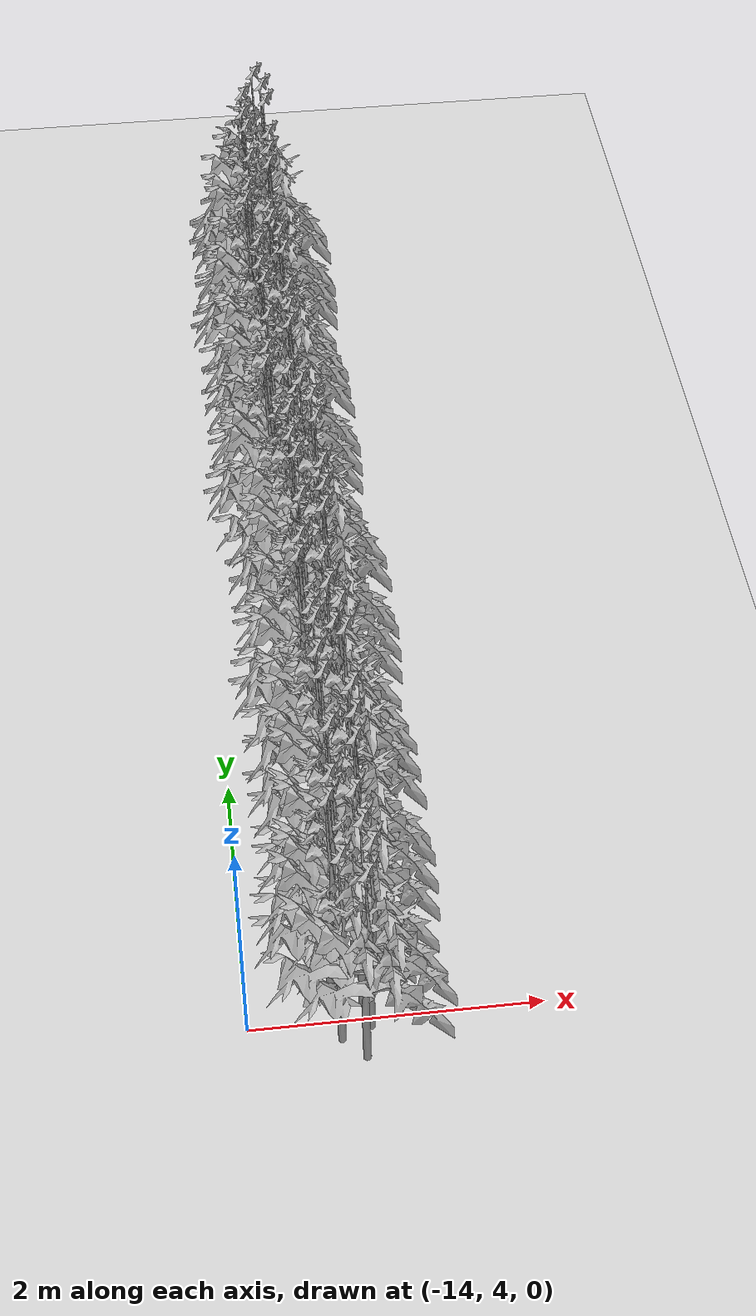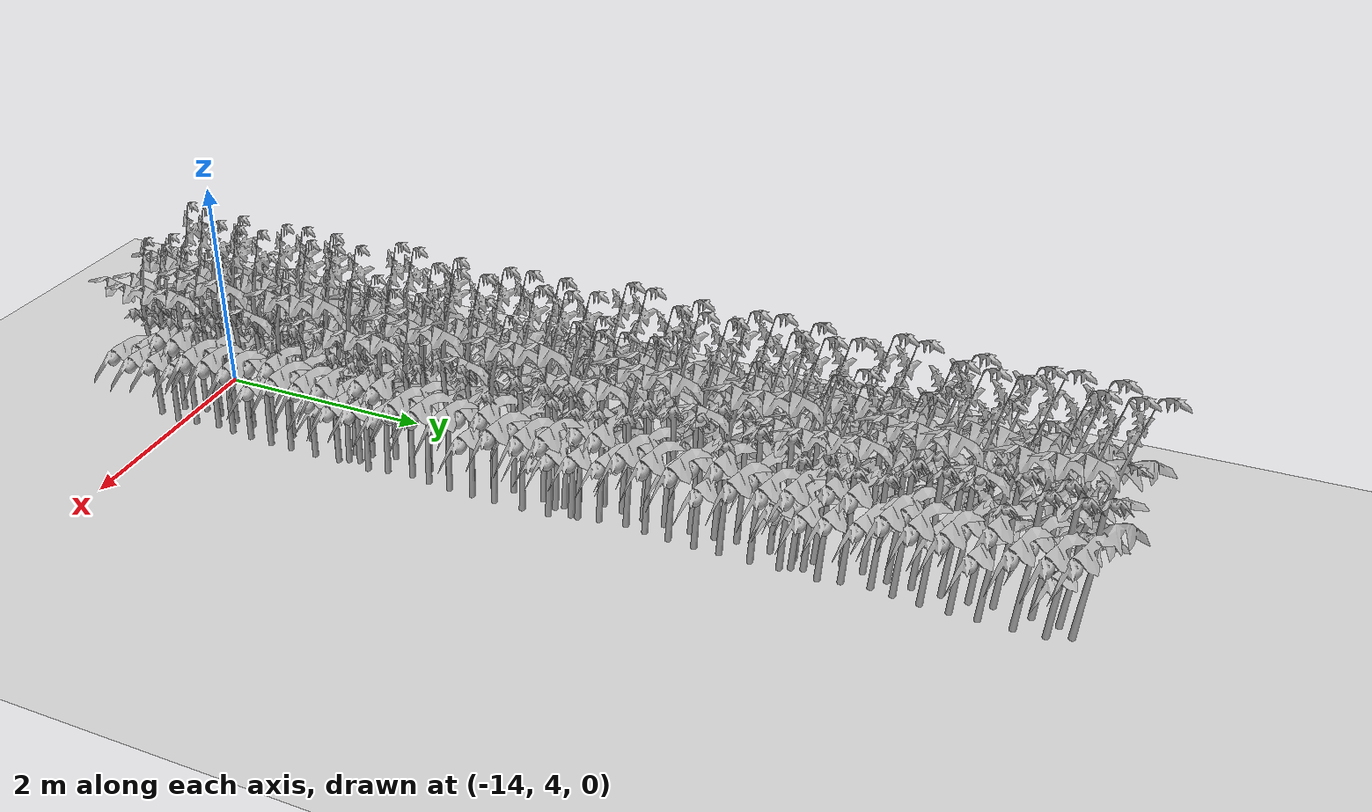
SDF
<sdf version="1.6">
 <world name="default">
  <model name="ground_plane">
   <static>1</static>
   <link name="link">
    <collision name="collision">
     <geometry><plane><normal>0 0 1</normal><size>100 100</size></plane></geometry>
     <surface>
      <contact><collide_bitmask>65535</collide_bitmask></contact>
      <friction><ode><mu>100</mu><mu2>50</mu2></ode></friction>
     </surface>
    </collision>
    <visual name="visual">
     <cast_shadows>0</cast_shadows>
     <geometry><plane><normal>0 0 1</normal><size>100 100</size></plane></geometry>
     <material>
      <script><uri>file://media/materials/scripts/gazebo.material</uri><name>Gazebo/Grey</name></script>
     </material>
    </visual>
   </link>
  </model>
  <model name="MIddle_Plant_3_11">
   <model name="MIddle_Plant_1">
    <model name="tomato_plant_big">
     <static>1</static>
     <link name="link">
      <collision name="collision">
       <pose>0 0 0 1.5708 -0 0</pose>
       <geometry><mesh><scale>0.5 0.6 0.5</scale><uri>model://stick/meshes/stick.dae</uri></mesh></geometry>
      </collision>
      <visual name="visual">
       <geometry>
        <mesh><scale>5e-06 5e-06 7e-06</scale><uri>model://tomato_plant_big/meshes/tomato-plant.dae</uri></mesh>
       </geometry>
      </visual>
     </link>
     <pose>-0.144318 -0.693607 -0 0 -0 0</pose>
    </model>
    <model name="tomato_plant_big_0">
     <static>1</static>
     <link name="link">
      <collision name="collision">
       <pose>0 0 0 1.5708 -0 0</pose>
       <geometry><mesh><scale>0.5 0.6 0.5</scale><uri>model://stick/meshes/stick.dae</uri></mesh></geometry>
      </collision>
      <visual name="visual">
       <geometry>
        <mesh><scale>5e-06 5e-06 7e-06</scale><uri>model://tomato_plant_big/meshes/tomato-plant.dae</uri></mesh>
       </geometry>
      </visual>
     </link>
     <pose>-0.11784 -0.519827 0 0 -0 0</pose>
    </model>
    <model name="tomato_plant_big_1">
     <static>1</static>
     <link name="link">
      <collision name="collision">
       <pose>0 0 0 1.5708 -0 0</pose>
       <geometry><mesh><scale>0.5 0.6 0.5</scale><uri>model://stick/meshes/stick.dae</uri></mesh></geometry>
      </collision>
      <visual name="visual">
       <geometry>
        <mesh><scale>5e-06 5e-06 7e-06</scale><uri>model://tomato_plant_big/meshes/tomato-plant.dae</uri></mesh>
       </geometry>
      </visual>
     </link>
     <pose>0.073755 -0.247584 0 0 -0 0</pose>
    </model>
    <model name="tomato_plant_big_10">
     <static>1</static>
     <link name="link">
      <collision name="collision">
       <pose>0 0 0 1.5708 -0 0</pose>
       <geometry><mesh><scale>0.5 0.6 0.5</scale><uri>model://stick/meshes/stick.dae</uri></mesh></geometry>
      </collision>
      <visual name="visual">
       <geometry>
        <mesh><scale>5e-06 5e-06 7e-06</scale><uri>model://tomato_plant_big/meshes/tomato-plant.dae</uri></mesh>
       </geometry>
      </visual>
     </link>
     <pose>0.037052 1.07094 0 0 -0 0</pose>
    </model>
    <model name="tomato_plant_big_2">
     <static>1</static>
     <link name="link">
      <collision name="collision">
       <pose>0 0 0 1.5708 -0 0</pose>
       <geometry><mesh><scale>0.5 0.6 0.5</scale><uri>model://stick/meshes/stick.dae</uri></mesh></geometry>
      </collision>
      <visual name="visual">
       <geometry>
        <mesh><scale>5e-06 5e-06 7e-06</scale><uri>model://tomato_plant_big/meshes/tomato-plant.dae</uri></mesh>
       </geometry>
      </visual>
     </link>
     <pose>-0.076926 -0.131165 0 0 -0 0</pose>
    </model>
    <model name="tomato_plant_big_3">
     <static>1</static>
     <link name="link">
      <collision name="collision">
       <pose>0 0 0 1.5708 -0 0</pose>
       <geometry><mesh><scale>0.5 0.6 0.5</scale><uri>model://stick/meshes/stick.dae</uri></mesh></geometry>
      </collision>
      <visual name="visual">
       <geometry>
        <mesh><scale>5e-06 5e-06 7e-06</scale><uri>model://tomato_plant_big/meshes/tomato-plant.dae</uri></mesh>
       </geometry>
      </visual>
     </link>
     <pose>0.093714 -0.038386 0 0 -0 0</pose>
    </model>
    <model name="tomato_plant_big_4">
     <static>1</static>
     <link name="link">
      <collision name="collision">
       <pose>0 0 0 1.5708 -0 0</pose>
       <geometry><mesh><scale>0.5 0.6 0.5</scale><uri>model://stick/meshes/stick.dae</uri></mesh></geometry>
      </collision>
      <visual name="visual">
       <geometry>
        <mesh><scale>5e-06 5e-06 7e-06</scale><uri>model://tomato_plant_big/meshes/tomato-plant.dae</uri></mesh>
       </geometry>
      </visual>
     </link>
     <pose>0.103117 0.184356 0 0 -0 0</pose>
    </model>
    <model name="tomato_plant_big_5">
     <static>1</static>
     <link name="link">
      <collision name="collision">
       <pose>0 0 0 1.5708 -0 0</pose>
       <geometry><mesh><scale>0.5 0.6 0.5</scale><uri>model://stick/meshes/stick.dae</uri></mesh></geometry>
      </collision>
      <visual name="visual">
       <geometry>
        <mesh><scale>5e-06 5e-06 7e-06</scale><uri>model://tomato_plant_big/meshes/tomato-plant.dae</uri></mesh>
       </geometry>
      </visual>
     </link>
     <pose>-0.074883 0.301479 0 0 -0 0</pose>
    </model>
    <model name="tomato_plant_big_6">
     <static>1</static>
     <link name="link">
      <collision name="collision">
       <pose>0 0 0 1.5708 -0 0</pose>
       <geometry><mesh><scale>0.5 0.6 0.5</scale><uri>model://stick/meshes/stick.dae</uri></mesh></geometry>
      </collision>
      <visual name="visual">
       <geometry>
        <mesh><scale>5e-06 5e-06 7e-06</scale><uri>model://tomato_plant_big/meshes/tomato-plant.dae</uri></mesh>
       </geometry>
      </visual>
     </link>
     <pose>-0.096921 0.484007 0 0 -0 0</pose>
    </model>
    <model name="tomato_plant_big_7">
     <static>1</static>
     <link name="link">
      <collision name="collision">
       <pose>0 0 0 1.5708 -0 0</pose>
       <geometry><mesh><scale>0.5 0.6 0.5</scale><uri>model://stick/meshes/stick.dae</uri></mesh></geometry>
      </collision>
      <visual name="visual">
       <geometry>
        <mesh><scale>5e-06 5e-06 7e-06</scale><uri>model://tomato_plant_big/meshes/tomato-plant.dae</uri></mesh>
       </geometry>
      </visual>
     </link>
     <pose>0.107491 0.653976 0 0 -0 0</pose>
    </model>
    <model name="tomato_plant_big_8">
     <static>1</static>
     <link name="link">
      <collision name="collision">
       <pose>0 0 0 1.5708 -0 0</pose>
       <geometry><mesh><scale>0.5 0.6 0.5</scale><uri>model://stick/meshes/stick.dae</uri></mesh></geometry>
      </collision>
      <visual name="visual">
       <geometry>
        <mesh><scale>5e-06 5e-06 7e-06</scale><uri>model://tomato_plant_big/meshes/tomato-plant.dae</uri></mesh>
       </geometry>
      </visual>
     </link>
     <pose>-0.07985 0.768549 0 0 -0 0</pose>
    </model>
    <model name="tomato_plant_big_9">
     <static>1</static>
     <link name="link">
      <collision name="collision">
       <pose>0 0 0 1.5708 -0 0</pose>
       <geometry><mesh><scale>0.5 0.6 0.5</scale><uri>model://stick/meshes/stick.dae</uri></mesh></geometry>
      </collision>
      <visual name="visual">
       <geometry>
        <mesh><scale>5e-06 5e-06 7e-06</scale><uri>model://tomato_plant_big/meshes/tomato-plant.dae</uri></mesh>
       </geometry>
      </visual>
     </link>
     <pose>0.098361 0.890852 0 0 -0 0</pose>
    </model>
    <model name="tomato_plant_medium">
     <static>1</static>
     <link name="link">
      <collision name="collision">
       <pose>0 0 0 1.5708 -0 0</pose>
       <geometry><mesh><scale>0.5 0.5 0.5</scale><uri>model://stick/meshes/stick.dae</uri></mesh></geometry>
      </collision>
      <visual name="visual">
       <geometry>
        <mesh><scale>5e-06 5e-06 6e-06</scale><uri>model://tomato_plant_medium/meshes/tomato-plant.dae</uri></mesh>
       </geometry>
      </visual>
     </link>
     <pose>0.056913 -1.05328 0 0 -0 0</pose>
    </model>
    <model name="tomato_plant_medium_0">
     <static>1</static>
     <link name="link">
      <collision name="collision">
       <pose>0 0 0 1.5708 -0 0</pose>
       <geometry><mesh><scale>0.5 0.5 0.5</scale><uri>model://stick/meshes/stick.dae</uri></mesh></geometry>
      </collision>
      <visual name="visual">
       <geometry>
        <mesh><scale>5e-06 5e-06 6e-06</scale><uri>model://tomato_plant_medium/meshes/tomato-plant.dae</uri></mesh>
       </geometry>
      </visual>
     </link>
     <pose>-0.092719 -0.905729 0 0 -0 0</pose>
    </model>
    <model name="tomato_plant_medium_1">
     <static>1</static>
     <link name="link">
      <collision name="collision">
       <pose>0 0 0 1.5708 -0 0</pose>
       <geometry><mesh><scale>0.5 0.5 0.5</scale><uri>model://stick/meshes/stick.dae</uri></mesh></geometry>
      </collision>
      <visual name="visual">
       <geometry>
        <mesh><scale>5e-06 5e-06 6e-06</scale><uri>model://tomato_plant_medium/meshes/tomato-plant.dae</uri></mesh>
       </geometry>
      </visual>
     </link>
     <pose>0.108962 -0.829637 0 0 -0 0</pose>
    </model>
    <model name="tomato_plant_medium_2">
     <static>1</static>
     <link name="link">
      <collision name="collision">
       <pose>0 0 0 1.5708 -0 0</pose>
       <geometry><mesh><scale>0.5 0.5 0.5</scale><uri>model://stick/meshes/stick.dae</uri></mesh></geometry>
      </collision>
      <visual name="visual">
       <geometry>
        <mesh><scale>5e-06 5e-06 6e-06</scale><uri>model://tomato_plant_medium/meshes/tomato-plant.dae</uri></mesh>
       </geometry>
      </visual>
     </link>
     <pose>0.071216 -0.652507 0 0 -0 0</pose>
    </model>
    <model name="tomato_plant_medium_3">
     <static>1</static>
     <link name="link">
      <collision name="collision">
       <pose>0 0 0 1.5708 -0 0</pose>
       <geometry><mesh><scale>0.5 0.5 0.5</scale><uri>model://stick/meshes/stick.dae</uri></mesh></geometry>
      </collision>
      <visual name="visual">
       <geometry>
        <mesh><scale>5e-06 5e-06 6e-06</scale><uri>model://tomato_plant_medium/meshes/tomato-plant.dae</uri></mesh>
       </geometry>
      </visual>
     </link>
     <pose>0.047335 -0.423046 0 0 -0 0</pose>
    </model>
    <model name="tomato_plant_medium_4">
     <static>1</static>
     <link name="link">
      <collision name="collision">
       <pose>0 0 0 1.5708 -0 0</pose>
       <geometry><mesh><scale>0.5 0.5 0.5</scale><uri>model://stick/meshes/stick.dae</uri></mesh></geometry>
      </collision>
      <visual name="visual">
       <geometry>
        <mesh><scale>5e-06 5e-06 6e-06</scale><uri>model://tomato_plant_medium/meshes/tomato-plant.dae</uri></mesh>
       </geometry>
      </visual>
     </link>
     <pose>-0.081012 -0.320324 0 0 -0 0</pose>
    </model>
    <model name="tomato_plant_medium_5">
     <static>1</static>
     <link name="link">
      <collision name="collision">
       <pose>0 0 0 1.5708 -0 0</pose>
       <geometry><mesh><scale>0.5 0.5 0.5</scale><uri>model://stick/meshes/stick.dae</uri></mesh></geometry>
      </collision>
      <visual name="visual">
       <geometry>
        <mesh><scale>5e-06 5e-06 6e-06</scale><uri>model://tomato_plant_medium/meshes/tomato-plant.dae</uri></mesh>
       </geometry>
      </visual>
     </link>
     <pose>-0.07452 0.095988 0 0 -0 0</pose>
    </model>
    <model name="tomato_plant_medium_6">
     <static>1</static>
     <link name="link">
      <collision name="collision">
       <pose>0 0 0 1.5708 -0 0</pose>
       <geometry><mesh><scale>0.5 0.5 0.5</scale><uri>model://stick/meshes/stick.dae</uri></mesh></geometry>
      </collision>
      <visual name="visual">
       <geometry>
        <mesh><scale>5e-06 5e-06 6e-06</scale><uri>model://tomato_plant_medium/meshes/tomato-plant.dae</uri></mesh>
       </geometry>
      </visual>
     </link>
     <pose>0.101424 0.395443 0 0 -0 0</pose>
    </model>
    <model name="tomato_plant_small">
     <static>1</static>
     <link name="link">
      <collision name="collision">
       <pose>0 0 0 1.5708 -0 0</pose>
       <geometry><mesh><scale>0.5 0.45 0.5</scale><uri>model://stick/meshes/stick.dae</uri></mesh></geometry>
      </collision>
      <visual name="visual">
       <geometry>
        <mesh><scale>5e-06 5e-06 5e-06</scale><uri>model://tomato_plant_small/meshes/tomato-plant.dae</uri></mesh>
       </geometry>
      </visual>
     </link>
     <pose>-0.060351 0.969512 0 0 -0 0</pose>
    </model>
    <static>0</static>
    <pose>0.040757 1.77284 0 0 -0 0</pose>
   </model>
   <model name="MIddle_Plant_2">
    <model name="MIddle_Plant_1">
     <model name="tomato_plant_big">
      <static>1</static>
      <link name="link">
       <collision name="collision">
        <pose>0 0 0 1.5708 -0 0</pose>
        <geometry><mesh><scale>0.5 0.6 0.5</scale><uri>model://stick/meshes/stick.dae</uri></mesh></geometry>
       </collision>
       <visual name="visual">
        <geometry>
         <mesh><scale>5e-06 5e-06 7e-06</scale><uri>model://tomato_plant_big/meshes/tomato-plant.dae</uri></mesh>
        </geometry>
       </visual>
      </link>
      <pose>-0.144318 -0.693607 -0 0 -0 0</pose>
     </model>
     <model name="tomato_plant_big_0">
      <static>1</static>
      <link name="link">
       <collision name="collision">
        <pose>0 0 0 1.5708 -0 0</pose>
        <geometry><mesh><scale>0.5 0.6 0.5</scale><uri>model://stick/meshes/stick.dae</uri></mesh></geometry>
       </collision>
       <visual name="visual">
        <geometry>
         <mesh><scale>5e-06 5e-06 7e-06</scale><uri>model://tomato_plant_big/meshes/tomato-plant.dae</uri></mesh>
        </geometry>
       </visual>
      </link>
      <pose>-0.11784 -0.519827 0 0 -0 0</pose>
     </model>
     <model name="tomato_plant_big_1">
      <static>1</static>
      <link name="link">
       <collision name="collision">
        <pose>0 0 0 1.5708 -0 0</pose>
        <geometry><mesh><scale>0.5 0.6 0.5</scale><uri>model://stick/meshes/stick.dae</uri></mesh></geometry>
       </collision>
       <visual name="visual">
        <geometry>
         <mesh><scale>5e-06 5e-06 7e-06</scale><uri>model://tomato_plant_big/meshes/tomato-plant.dae</uri></mesh>
        </geometry>
       </visual>
      </link>
      <pose>0.073755 -0.247584 0 0 -0 0</pose>
     </model>
     <model name="tomato_plant_big_10">
      <static>1</static>
      <link name="link">
       <collision name="collision">
        <pose>0 0 0 1.5708 -0 0</pose>
        <geometry><mesh><scale>0.5 0.6 0.5</scale><uri>model://stick/meshes/stick.dae</uri></mesh></geometry>
       </collision>
       <visual name="visual">
        <geometry>
         <mesh><scale>5e-06 5e-06 7e-06</scale><uri>model://tomato_plant_big/meshes/tomato-plant.dae</uri></mesh>
        </geometry>
       </visual>
      </link>
      <pose>0.037052 1.07094 0 0 -0 0</pose>
     </model>
     <model name="tomato_plant_big_2">
      <static>1</static>
      <link name="link">
       <collision name="collision">
        <pose>0 0 0 1.5708 -0 0</pose>
        <geometry><mesh><scale>0.5 0.6 0.5</scale><uri>model://stick/meshes/stick.dae</uri></mesh></geometry>
       </collision>
       <visual name="visual">
        <geometry>
         <mesh><scale>5e-06 5e-06 7e-06</scale><uri>model://tomato_plant_big/meshes/tomato-plant.dae</uri></mesh>
        </geometry>
       </visual>
      </link>
      <pose>-0.076926 -0.131165 0 0 -0 0</pose>
     </model>
     <model name="tomato_plant_big_3">
      <static>1</static>
      <link name="link">
       <collision name="collision">
        <pose>0 0 0 1.5708 -0 0</pose>
        <geometry><mesh><scale>0.5 0.6 0.5</scale><uri>model://stick/meshes/stick.dae</uri></mesh></geometry>
       </collision>
       <visual name="visual">
        <geometry>
         <mesh><scale>5e-06 5e-06 7e-06</scale><uri>model://tomato_plant_big/meshes/tomato-plant.dae</uri></mesh>
        </geometry>
       </visual>
      </link>
      <pose>0.093714 -0.038386 0 0 -0 0</pose>
     </model>
     <model name="tomato_plant_big_4">
      <static>1</static>
      <link name="link">
       <collision name="collision">
        <pose>0 0 0 1.5708 -0 0</pose>
        <geometry><mesh><scale>0.5 0.6 0.5</scale><uri>model://stick/meshes/stick.dae</uri></mesh></geometry>
       </collision>
       <visual name="visual">
        <geometry>
         <mesh><scale>5e-06 5e-06 7e-06</scale><uri>model://tomato_plant_big/meshes/tomato-plant.dae</uri></mesh>
        </geometry>
       </visual>
      </link>
      <pose>0.103117 0.184356 0 0 -0 0</pose>
     </model>
     <model name="tomato_plant_big_5">
      <static>1</static>
      <link name="link">
       <collision name="collision">
        <pose>0 0 0 1.5708 -0 0</pose>
        <geometry><mesh><scale>0.5 0.6 0.5</scale><uri>model://stick/meshes/stick.dae</uri></mesh></geometry>
       </collision>
       <visual name="visual">
        <geometry>
         <mesh><scale>5e-06 5e-06 7e-06</scale><uri>model://tomato_plant_big/meshes/tomato-plant.dae</uri></mesh>
        </geometry>
       </visual>
      </link>
      <pose>-0.074883 0.301479 0 0 -0 0</pose>
     </model>
     <model name="tomato_plant_big_6">
      <static>1</static>
      <link name="link">
       <collision name="collision">
        <pose>0 0 0 1.5708 -0 0</pose>
        <geometry><mesh><scale>0.5 0.6 0.5</scale><uri>model://stick/meshes/stick.dae</uri></mesh></geometry>
       </collision>
       <visual name="visual">
        <geometry>
         <mesh><scale>5e-06 5e-06 7e-06</scale><uri>model://tomato_plant_big/meshes/tomato-plant.dae</uri></mesh>
        </geometry>
       </visual>
      </link>
      <pose>-0.096921 0.484007 0 0 -0 0</pose>
     </model>
     <model name="tomato_plant_big_7">
      <static>1</static>
      <link name="link">
       <collision name="collision">
        <pose>0 0 0 1.5708 -0 0</pose>
        <geometry><mesh><scale>0.5 0.6 0.5</scale><uri>model://stick/meshes/stick.dae</uri></mesh></geometry>
       </collision>
       <visual name="visual">
        <geometry>
         <mesh><scale>5e-06 5e-06 7e-06</scale><uri>model://tomato_plant_big/meshes/tomato-plant.dae</uri></mesh>
        </geometry>
       </visual>
      </link>
      <pose>0.107491 0.653976 0 0 -0 0</pose>
     </model>
     <model name="tomato_plant_big_8">
      <static>1</static>
      <link name="link">
       <collision name="collision">
        <pose>0 0 0 1.5708 -0 0</pose>
        <geometry><mesh><scale>0.5 0.6 0.5</scale><uri>model://stick/meshes/stick.dae</uri></mesh></geometry>
       </collision>
       <visual name="visual">
        <geometry>
         <mesh><scale>5e-06 5e-06 7e-06</scale><uri>model://tomato_plant_big/meshes/tomato-plant.dae</uri></mesh>
        </geometry>
       </visual>
      </link>
      <pose>-0.07985 0.768549 0 0 -0 0</pose>
     </model>
     <model name="tomato_plant_big_9">
      <static>1</static>
      <link name="link">
       <collision name="collision">
        <pose>0 0 0 1.5708 -0 0</pose>
        <geometry><mesh><scale>0.5 0.6 0.5</scale><uri>model://stick/meshes/stick.dae</uri></mesh></geometry>
       </collision>
       <visual name="visual">
        <geometry>
         <mesh><scale>5e-06 5e-06 7e-06</scale><uri>model://tomato_plant_big/meshes/tomato-plant.dae</uri></mesh>
        </geometry>
       </visual>
      </link>
      <pose>0.098361 0.890852 0 0 -0 0</pose>
     </model>
     <model name="tomato_plant_medium">
      <static>1</static>
      <link name="link">
       <collision name="collision">
        <pose>0 0 0 1.5708 -0 0</pose>
        <geometry><mesh><scale>0.5 0.5 0.5</scale><uri>model://stick/meshes/stick.dae</uri></mesh></geometry>
       </collision>
       <visual name="visual">
        <geometry>
         <mesh><scale>5e-06 5e-06 6e-06</scale><uri>model://tomato_plant_medium/meshes/tomato-plant.dae</uri></mesh>
        </geometry>
       </visual>
      </link>
      <pose>0.056913 -1.05328 0 0 -0 0</pose>
     </model>
     <model name="tomato_plant_medium_0">
      <static>1</static>
      <link name="link">
       <collision name="collision">
        <pose>0 0 0 1.5708 -0 0</pose>
        <geometry><mesh><scale>0.5 0.5 0.5</scale><uri>model://stick/meshes/stick.dae</uri></mesh></geometry>
       </collision>
       <visual name="visual">
        <geometry>
         <mesh><scale>5e-06 5e-06 6e-06</scale><uri>model://tomato_plant_medium/meshes/tomato-plant.dae</uri></mesh>
        </geometry>
       </visual>
      </link>
      <pose>-0.092719 -0.905729 0 0 -0 0</pose>
     </model>
     <model name="tomato_plant_medium_1">
      <static>1</static>
      <link name="link">
       <collision name="collision">
        <pose>0 0 0 1.5708 -0 0</pose>
        <geometry><mesh><scale>0.5 0.5 0.5</scale><uri>model://stick/meshes/stick.dae</uri></mesh></geometry>
       </collision>
       <visual name="visual">
        <geometry>
         <mesh><scale>5e-06 5e-06 6e-06</scale><uri>model://tomato_plant_medium/meshes/tomato-plant.dae</uri></mesh>
        </geometry>
       </visual>
      </link>
      <pose>0.108962 -0.829637 0 0 -0 0</pose>
     </model>
     <model name="tomato_plant_medium_2">
      <static>1</static>
      <link name="link">
       <collision name="collision">
        <pose>0 0 0 1.5708 -0 0</pose>
        <geometry><mesh><scale>0.5 0.5 0.5</scale><uri>model://stick/meshes/stick.dae</uri></mesh></geometry>
       </collision>
       <visual name="visual">
        <geometry>
         <mesh><scale>5e-06 5e-06 6e-06</scale><uri>model://tomato_plant_medium/meshes/tomato-plant.dae</uri></mesh>
        </geometry>
       </visual>
      </link>
      <pose>0.071216 -0.652507 0 0 -0 0</pose>
     </model>
     <model name="tomato_plant_medium_3">
      <static>1</static>
      <link name="link">
       <collision name="collision">
        <pose>0 0 0 1.5708 -0 0</pose>
        <geometry><mesh><scale>0.5 0.5 0.5</scale><uri>model://stick/meshes/stick.dae</uri></mesh></geometry>
       </collision>
       <visual name="visual">
        <geometry>
         <mesh><scale>5e-06 5e-06 6e-06</scale><uri>model://tomato_plant_medium/meshes/tomato-plant.dae</uri></mesh>
        </geometry>
       </visual>
      </link>
      <pose>0.047335 -0.423046 0 0 -0 0</pose>
     </model>
     <model name="tomato_plant_medium_4">
      <static>1</static>
      <link name="link">
       <collision name="collision">
        <pose>0 0 0 1.5708 -0 0</pose>
        <geometry><mesh><scale>0.5 0.5 0.5</scale><uri>model://stick/meshes/stick.dae</uri></mesh></geometry>
       </collision>
       <visual name="visual">
        <geometry>
         <mesh><scale>5e-06 5e-06 6e-06</scale><uri>model://tomato_plant_medium/meshes/tomato-plant.dae</uri></mesh>
        </geometry>
       </visual>
      </link>
      <pose>-0.081012 -0.320324 0 0 -0 0</pose>
     </model>
     <model name="tomato_plant_medium_5">
      <static>1</static>
      <link name="link">
       <collision name="collision">
        <pose>0 0 0 1.5708 -0 0</pose>
        <geometry><mesh><scale>0.5 0.5 0.5</scale><uri>model://stick/meshes/stick.dae</uri></mesh></geometry>
       </collision>
       <visual name="visual">
        <geometry>
         <mesh><scale>5e-06 5e-06 6e-06</scale><uri>model://tomato_plant_medium/meshes/tomato-plant.dae</uri></mesh>
        </geometry>
       </visual>
      </link>
      <pose>-0.07452 0.095988 0 0 -0 0</pose>
     </model>
     <model name="tomato_plant_medium_6">
      <static>1</static>
      <link name="link">
       <collision name="collision">
        <pose>0 0 0 1.5708 -0 0</pose>
        <geometry><mesh><scale>0.5 0.5 0.5</scale><uri>model://stick/meshes/stick.dae</uri></mesh></geometry>
       </collision>
       <visual name="visual">
        <geometry>
         <mesh><scale>5e-06 5e-06 6e-06</scale><uri>model://tomato_plant_medium/meshes/tomato-plant.dae</uri></mesh>
        </geometry>
       </visual>
      </link>
      <pose>0.101424 0.395443 0 0 -0 0</pose>
     </model>
     <model name="tomato_plant_small">
      <static>1</static>
      <link name="link">
       <collision name="collision">
        <pose>0 0 0 1.5708 -0 0</pose>
        <geometry><mesh><scale>0.5 0.45 0.5</scale><uri>model://stick/meshes/stick.dae</uri></mesh></geometry>
       </collision>
       <visual name="visual">
        <geometry>
         <mesh><scale>5e-06 5e-06 5e-06</scale><uri>model://tomato_plant_small/meshes/tomato-plant.dae</uri></mesh>
        </geometry>
       </visual>
      </link>
      <pose>-0.060351 0.969512 0 0 -0 0</pose>
     </model>
     <static>0</static>
     <pose>0.763113 0.028917 0 0 -0 0</pose>
    </model>
    <model name="tomato_plant_big">
     <static>1</static>
     <link name="link">
      <collision name="collision">
       <pose>0 0 0 1.5708 -0 0</pose>
       <geometry><mesh><scale>0.5 0.6 0.5</scale><uri>model://stick/meshes/stick.dae</uri></mesh></geometry>
      </collision>
      <visual name="visual">
       <geometry>
        <mesh><scale>5e-06 5e-06 7e-06</scale><uri>model://tomato_plant_big/meshes/tomato-plant.dae</uri></mesh>
       </geometry>
      </visual>
     </link>
     <pose>0.613724 -2.69399 -0 0 -0 0</pose>
    </model>
    <model name="tomato_plant_big_0">
     <static>1</static>
     <link name="link">
      <collision name="collision">
       <pose>0 0 0 1.5708 -0 0</pose>
       <geometry><mesh><scale>0.5 0.6 0.5</scale><uri>model://stick/meshes/stick.dae</uri></mesh></geometry>
      </collision>
      <visual name="visual">
       <geometry>
        <mesh><scale>5e-06 5e-06 7e-06</scale><uri>model://tomato_plant_big/meshes/tomato-plant.dae</uri></mesh>
       </geometry>
      </visual>
     </link>
     <pose>0.640202 -2.52021 0 0 -0 0</pose>
    </model>
    <model name="tomato_plant_big_1">
     <static>1</static>
     <link name="link">
      <collision name="collision">
       <pose>0 0 0 1.5708 -0 0</pose>
       <geometry><mesh><scale>0.5 0.6 0.5</scale><uri>model://stick/meshes/stick.dae</uri></mesh></geometry>
      </collision>
      <visual name="visual">
       <geometry>
        <mesh><scale>5e-06 5e-06 7e-06</scale><uri>model://tomato_plant_big/meshes/tomato-plant.dae</uri></mesh>
       </geometry>
      </visual>
     </link>
     <pose>0.831797 -2.24797 0 0 -0 0</pose>
    </model>
    <model name="tomato_plant_big_10">
     <static>1</static>
     <link name="link">
      <collision name="collision">
       <pose>0 0 0 1.5708 -0 0</pose>
       <geometry><mesh><scale>0.5 0.6 0.5</scale><uri>model://stick/meshes/stick.dae</uri></mesh></geometry>
      </collision>
      <visual name="visual">
       <geometry>
        <mesh><scale>5e-06 5e-06 7e-06</scale><uri>model://tomato_plant_big/meshes/tomato-plant.dae</uri></mesh>
       </geometry>
      </visual>
     </link>
     <pose>0.795094 -0.929446 0 0 -0 0</pose>
    </model>
    <model name="tomato_plant_big_2">
     <static>1</static>
     <link name="link">
      <collision name="collision">
       <pose>0 0 0 1.5708 -0 0</pose>
       <geometry><mesh><scale>0.5 0.6 0.5</scale><uri>model://stick/meshes/stick.dae</uri></mesh></geometry>
      </collision>
      <visual name="visual">
       <geometry>
        <mesh><scale>5e-06 5e-06 7e-06</scale><uri>model://tomato_plant_big/meshes/tomato-plant.dae</uri></mesh>
       </geometry>
      </visual>
     </link>
     <pose>0.681116 -2.13155 0 0 -0 0</pose>
    </model>
    <model name="tomato_plant_big_3">
     <static>1</static>
     <link name="link">
      <collision name="collision">
       <pose>0 0 0 1.5708 -0 0</pose>
       <geometry><mesh><scale>0.5 0.6 0.5</scale><uri>model://stick/meshes/stick.dae</uri></mesh></geometry>
      </collision>
      <visual name="visual">
       <geometry>
        <mesh><scale>5e-06 5e-06 7e-06</scale><uri>model://tomato_plant_big/meshes/tomato-plant.dae</uri></mesh>
       </geometry>
      </visual>
     </link>
     <pose>0.851755 -2.03877 0 0 -0 0</pose>
    </model>
    <model name="tomato_plant_big_4">
     <static>1</static>
     <link name="link">
      <collision name="collision">
       <pose>0 0 0 1.5708 -0 0</pose>
       <geometry><mesh><scale>0.5 0.6 0.5</scale><uri>model://stick/meshes/stick.dae</uri></mesh></geometry>
      </collision>
      <visual name="visual">
       <geometry>
        <mesh><scale>5e-06 5e-06 7e-06</scale><uri>model://tomato_plant_big/meshes/tomato-plant.dae</uri></mesh>
       </geometry>
      </visual>
     </link>
     <pose>0.861158 -1.81603 0 0 -0 0</pose>
    </model>
    <model name="tomato_plant_big_5">
     <static>1</static>
     <link name="link">
      <collision name="collision">
       <pose>0 0 0 1.5708 -0 0</pose>
       <geometry><mesh><scale>0.5 0.6 0.5</scale><uri>model://stick/meshes/stick.dae</uri></mesh></geometry>
      </collision>
      <visual name="visual">
       <geometry>
        <mesh><scale>5e-06 5e-06 7e-06</scale><uri>model://tomato_plant_big/meshes/tomato-plant.dae</uri></mesh>
       </geometry>
      </visual>
     </link>
     <pose>0.683158 -1.69891 0 0 -0 0</pose>
    </model>
    <model name="tomato_plant_big_6">
     <static>1</static>
     <link name="link">
      <collision name="collision">
       <pose>0 0 0 1.5708 -0 0</pose>
       <geometry><mesh><scale>0.5 0.6 0.5</scale><uri>model://stick/meshes/stick.dae</uri></mesh></geometry>
      </collision>
      <visual name="visual">
       <geometry>
        <mesh><scale>5e-06 5e-06 7e-06</scale><uri>model://tomato_plant_big/meshes/tomato-plant.dae</uri></mesh>
       </geometry>
      </visual>
     </link>
     <pose>0.66112 -1.51638 0 0 -0 0</pose>
    </model>
    <model name="tomato_plant_big_7">
     <static>1</static>
     <link name="link">
      <collision name="collision">
       <pose>0 0 0 1.5708 -0 0</pose>
       <geometry><mesh><scale>0.5 0.6 0.5</scale><uri>model://stick/meshes/stick.dae</uri></mesh></geometry>
      </collision>
      <visual name="visual">
       <geometry>
        <mesh><scale>5e-06 5e-06 7e-06</scale><uri>model://tomato_plant_big/meshes/tomato-plant.dae</uri></mesh>
       </geometry>
      </visual>
     </link>
     <pose>0.865532 -1.34641 0 0 -0 0</pose>
    </model>
    <model name="tomato_plant_big_8">
     <static>1</static>
     <link name="link">
      <collision name="collision">
       <pose>0 0 0 1.5708 -0 0</pose>
       <geometry><mesh><scale>0.5 0.6 0.5</scale><uri>model://stick/meshes/stick.dae</uri></mesh></geometry>
      </collision>
      <visual name="visual">
       <geometry>
        <mesh><scale>5e-06 5e-06 7e-06</scale><uri>model://tomato_plant_big/meshes/tomato-plant.dae</uri></mesh>
       </geometry>
      </visual>
     </link>
     <pose>0.678192 -1.23184 0 0 -0 0</pose>
    </model>
    <model name="tomato_plant_big_9">
     <static>1</static>
     <link name="link">
      <collision name="collision">
       <pose>0 0 0 1.5708 -0 0</pose>
       <geometry><mesh><scale>0.5 0.6 0.5</scale><uri>model://stick/meshes/stick.dae</uri></mesh></geometry>
      </collision>
      <visual name="visual">
       <geometry>
        <mesh><scale>5e-06 5e-06 7e-06</scale><uri>model://tomato_plant_big/meshes/tomato-plant.dae</uri></mesh>
       </geometry>
      </visual>
     </link>
     <pose>0.856402 -1.10953 0 0 -0 0</pose>
    </model>
    <model name="tomato_plant_medium">
     <static>1</static>
     <link name="link">
      <collision name="collision">
       <pose>0 0 0 1.5708 -0 0</pose>
       <geometry><mesh><scale>0.5 0.5 0.5</scale><uri>model://stick/meshes/stick.dae</uri></mesh></geometry>
      </collision>
      <visual name="visual">
       <geometry>
        <mesh><scale>5e-06 5e-06 6e-06</scale><uri>model://tomato_plant_medium/meshes/tomato-plant.dae</uri></mesh>
       </geometry>
      </visual>
     </link>
     <pose>0.814955 -3.05367 0 0 -0 0</pose>
    </model>
    <model name="tomato_plant_medium_0">
     <static>1</static>
     <link name="link">
      <collision name="collision">
       <pose>0 0 0 1.5708 -0 0</pose>
       <geometry><mesh><scale>0.5 0.5 0.5</scale><uri>model://stick/meshes/stick.dae</uri></mesh></geometry>
      </collision>
      <visual name="visual">
       <geometry>
        <mesh><scale>5e-06 5e-06 6e-06</scale><uri>model://tomato_plant_medium/meshes/tomato-plant.dae</uri></mesh>
       </geometry>
      </visual>
     </link>
     <pose>0.665322 -2.90611 0 0 -0 0</pose>
    </model>
    <model name="tomato_plant_medium_1">
     <static>1</static>
     <link name="link">
      <collision name="collision">
       <pose>0 0 0 1.5708 -0 0</pose>
       <geometry><mesh><scale>0.5 0.5 0.5</scale><uri>model://stick/meshes/stick.dae</uri></mesh></geometry>
      </collision>
      <visual name="visual">
       <geometry>
        <mesh><scale>5e-06 5e-06 6e-06</scale><uri>model://tomato_plant_medium/meshes/tomato-plant.dae</uri></mesh>
       </geometry>
      </visual>
     </link>
     <pose>0.867004 -2.83002 0 0 -0 0</pose>
    </model>
    <model name="tomato_plant_medium_2">
     <static>1</static>
     <link name="link">
      <collision name="collision">
       <pose>0 0 0 1.5708 -0 0</pose>
       <geometry><mesh><scale>0.5 0.5 0.5</scale><uri>model://stick/meshes/stick.dae</uri></mesh></geometry>
      </collision>
      <visual name="visual">
       <geometry>
        <mesh><scale>5e-06 5e-06 6e-06</scale><uri>model://tomato_plant_medium/meshes/tomato-plant.dae</uri></mesh>
       </geometry>
      </visual>
     </link>
     <pose>0.829257 -2.65289 0 0 -0 0</pose>
    </model>
    <model name="tomato_plant_medium_3">
     <static>1</static>
     <link name="link">
      <collision name="collision">
       <pose>0 0 0 1.5708 -0 0</pose>
       <geometry><mesh><scale>0.5 0.5 0.5</scale><uri>model://stick/meshes/stick.dae</uri></mesh></geometry>
      </collision>
      <visual name="visual">
       <geometry>
        <mesh><scale>5e-06 5e-06 6e-06</scale><uri>model://tomato_plant_medium/meshes/tomato-plant.dae</uri></mesh>
       </geometry>
      </visual>
     </link>
     <pose>0.805376 -2.42343 0 0 -0 0</pose>
    </model>
    <model name="tomato_plant_medium_4">
     <static>1</static>
     <link name="link">
      <collision name="collision">
       <pose>0 0 0 1.5708 -0 0</pose>
       <geometry><mesh><scale>0.5 0.5 0.5</scale><uri>model://stick/meshes/stick.dae</uri></mesh></geometry>
      </collision>
      <visual name="visual">
       <geometry>
        <mesh><scale>5e-06 5e-06 6e-06</scale><uri>model://tomato_plant_medium/meshes/tomato-plant.dae</uri></mesh>
       </geometry>
      </visual>
     </link>
     <pose>0.67703 -2.32071 0 0 -0 0</pose>
    </model>
    <model name="tomato_plant_medium_5">
     <static>1</static>
     <link name="link">
      <collision name="collision">
       <pose>0 0 0 1.5708 -0 0</pose>
       <geometry><mesh><scale>0.5 0.5 0.5</scale><uri>model://stick/meshes/stick.dae</uri></mesh></geometry>
      </collision>
      <visual name="visual">
       <geometry>
        <mesh><scale>5e-06 5e-06 6e-06</scale><uri>model://tomato_plant_medium/meshes/tomato-plant.dae</uri></mesh>
       </geometry>
      </visual>
     </link>
     <pose>0.683522 -1.9044 0 0 -0 0</pose>
    </model>
    <model name="tomato_plant_medium_6">
     <static>1</static>
     <link name="link">
      <collision name="collision">
       <pose>0 0 0 1.5708 -0 0</pose>
       <geometry><mesh><scale>0.5 0.5 0.5</scale><uri>model://stick/meshes/stick.dae</uri></mesh></geometry>
      </collision>
      <visual name="visual">
       <geometry>
        <mesh><scale>5e-06 5e-06 6e-06</scale><uri>model://tomato_plant_medium/meshes/tomato-plant.dae</uri></mesh>
       </geometry>
      </visual>
     </link>
     <pose>0.859466 -1.60494 0 0 -0 0</pose>
    </model>
    <model name="tomato_plant_small">
     <static>1</static>
     <link name="link">
      <collision name="collision">
       <pose>0 0 0 1.5708 -0 0</pose>
       <geometry><mesh><scale>0.5 0.45 0.5</scale><uri>model://stick/meshes/stick.dae</uri></mesh></geometry>
      </collision>
      <visual name="visual">
       <geometry>
        <mesh><scale>5e-06 5e-06 5e-06</scale><uri>model://tomato_plant_small/meshes/tomato-plant.dae</uri></mesh>
       </geometry>
      </visual>
     </link>
     <pose>0.697691 -1.03087 0 0 -0 0</pose>
    </model>
    <static>0</static>
    <pose>-0.78485 5.73439 0 0 -0 0</pose>
   </model>
   <model name="tomato_plant_big">
    <static>1</static>
    <link name="link">
     <collision name="collision">
      <pose>0 0 0 1.5708 -0 0</pose>
      <geometry><mesh><scale>0.5 0.6 0.5</scale><uri>model://stick/meshes/stick.dae</uri></mesh></geometry>
     </collision>
     <visual name="visual">
      <geometry>
       <mesh><scale>5e-06 5e-06 7e-06</scale><uri>model://tomato_plant_big/meshes/tomato-plant.dae</uri></mesh>
      </geometry>
     </visual>
    </link>
    <pose>-0.108632 -0.950068 -0 0 -0 0</pose>
   </model>
   <model name="tomato_plant_big_0">
    <static>1</static>
    <link name="link">
     <collision name="collision">
      <pose>0 0 0 1.5708 -0 0</pose>
      <geometry><mesh><scale>0.5 0.6 0.5</scale><uri>model://stick/meshes/stick.dae</uri></mesh></geometry>
     </collision>
     <visual name="visual">
      <geometry>
       <mesh><scale>5e-06 5e-06 7e-06</scale><uri>model://tomato_plant_big/meshes/tomato-plant.dae</uri></mesh>
      </geometry>
     </visual>
    </link>
    <pose>-0.082154 -0.776288 0 0 -0 0</pose>
   </model>
   <model name="tomato_plant_big_1">
    <static>1</static>
    <link name="link">
     <collision name="collision">
      <pose>0 0 0 1.5708 -0 0</pose>
      <geometry><mesh><scale>0.5 0.6 0.5</scale><uri>model://stick/meshes/stick.dae</uri></mesh></geometry>
     </collision>
     <visual name="visual">
      <geometry>
       <mesh><scale>5e-06 5e-06 7e-06</scale><uri>model://tomato_plant_big/meshes/tomato-plant.dae</uri></mesh>
      </geometry>
     </visual>
    </link>
    <pose>0.109441 -0.504045 0 0 -0 0</pose>
   </model>
   <model name="tomato_plant_big_10">
    <static>1</static>
    <link name="link">
     <collision name="collision">
      <pose>0 0 0 1.5708 -0 0</pose>
      <geometry><mesh><scale>0.5 0.6 0.5</scale><uri>model://stick/meshes/stick.dae</uri></mesh></geometry>
     </collision>
     <visual name="visual">
      <geometry>
       <mesh><scale>5e-06 5e-06 7e-06</scale><uri>model://tomato_plant_big/meshes/tomato-plant.dae</uri></mesh>
      </geometry>
     </visual>
    </link>
    <pose>0.072738 0.814477 0 0 -0 0</pose>
   </model>
   <model name="tomato_plant_big_2">
    <static>1</static>
    <link name="link">
     <collision name="collision">
      <pose>0 0 0 1.5708 -0 0</pose>
      <geometry><mesh><scale>0.5 0.6 0.5</scale><uri>model://stick/meshes/stick.dae</uri></mesh></geometry>
     </collision>
     <visual name="visual">
      <geometry>
       <mesh><scale>5e-06 5e-06 7e-06</scale><uri>model://tomato_plant_big/meshes/tomato-plant.dae</uri></mesh>
      </geometry>
     </visual>
    </link>
    <pose>-0.04124 -0.387626 0 0 -0 0</pose>
   </model>
   <model name="tomato_plant_big_3">
    <static>1</static>
    <link name="link">
     <collision name="collision">
      <pose>0 0 0 1.5708 -0 0</pose>
      <geometry><mesh><scale>0.5 0.6 0.5</scale><uri>model://stick/meshes/stick.dae</uri></mesh></geometry>
     </collision>
     <visual name="visual">
      <geometry>
       <mesh><scale>5e-06 5e-06 7e-06</scale><uri>model://tomato_plant_big/meshes/tomato-plant.dae</uri></mesh>
      </geometry>
     </visual>
    </link>
    <pose>0.129399 -0.294847 0 0 -0 0</pose>
   </model>
   <model name="tomato_plant_big_4">
    <static>1</static>
    <link name="link">
     <collision name="collision">
      <pose>0 0 0 1.5708 -0 0</pose>
      <geometry><mesh><scale>0.5 0.6 0.5</scale><uri>model://stick/meshes/stick.dae</uri></mesh></geometry>
     </collision>
     <visual name="visual">
      <geometry>
       <mesh><scale>5e-06 5e-06 7e-06</scale><uri>model://tomato_plant_big/meshes/tomato-plant.dae</uri></mesh>
      </geometry>
     </visual>
    </link>
    <pose>0.138802 -0.072105 0 0 -0 0</pose>
   </model>
   <model name="tomato_plant_big_5">
    <static>1</static>
    <link name="link">
     <collision name="collision">
      <pose>0 0 0 1.5708 -0 0</pose>
      <geometry><mesh><scale>0.5 0.6 0.5</scale><uri>model://stick/meshes/stick.dae</uri></mesh></geometry>
     </collision>
     <visual name="visual">
      <geometry>
       <mesh><scale>5e-06 5e-06 7e-06</scale><uri>model://tomato_plant_big/meshes/tomato-plant.dae</uri></mesh>
      </geometry>
     </visual>
    </link>
    <pose>-0.039198 0.045018 0 0 -0 0</pose>
   </model>
   <model name="tomato_plant_big_6">
    <static>1</static>
    <link name="link">
     <collision name="collision">
      <pose>0 0 0 1.5708 -0 0</pose>
      <geometry><mesh><scale>0.5 0.6 0.5</scale><uri>model://stick/meshes/stick.dae</uri></mesh></geometry>
     </collision>
     <visual name="visual">
      <geometry>
       <mesh><scale>5e-06 5e-06 7e-06</scale><uri>model://tomato_plant_big/meshes/tomato-plant.dae</uri></mesh>
      </geometry>
     </visual>
    </link>
    <pose>-0.061236 0.227546 0 0 -0 0</pose>
   </model>
   <model name="tomato_plant_big_7">
    <static>1</static>
    <link name="link">
     <collision name="collision">
      <pose>0 0 0 1.5708 -0 0</pose>
      <geometry><mesh><scale>0.5 0.6 0.5</scale><uri>model://stick/meshes/stick.dae</uri></mesh></geometry>
     </collision>
     <visual name="visual">
      <geometry>
       <mesh><scale>5e-06 5e-06 7e-06</scale><uri>model://tomato_plant_big/meshes/tomato-plant.dae</uri></mesh>
      </geometry>
     </visual>
    </link>
    <pose>0.143176 0.397515 0 0 -0 0</pose>
   </model>
   <model name="tomato_plant_big_8">
    <static>1</static>
    <link name="link">
     <collision name="collision">
      <pose>0 0 0 1.5708 -0 0</pose>
      <geometry><mesh><scale>0.5 0.6 0.5</scale><uri>model://stick/meshes/stick.dae</uri></mesh></geometry>
     </collision>
     <visual name="visual">
      <geometry>
       <mesh><scale>5e-06 5e-06 7e-06</scale><uri>model://tomato_plant_big/meshes/tomato-plant.dae</uri></mesh>
      </geometry>
     </visual>
    </link>
    <pose>-0.044164 0.512088 0 0 -0 0</pose>
   </model>
   <model name="tomato_plant_big_9">
    <static>1</static>
    <link name="link">
     <collision name="collision">
      <pose>0 0 0 1.5708 -0 0</pose>
      <geometry><mesh><scale>0.5 0.6 0.5</scale><uri>model://stick/meshes/stick.dae</uri></mesh></geometry>
     </collision>
     <visual name="visual">
      <geometry>
       <mesh><scale>5e-06 5e-06 7e-06</scale><uri>model://tomato_plant_big/meshes/tomato-plant.dae</uri></mesh>
      </geometry>
     </visual>
    </link>
    <pose>0.134046 0.634391 0 0 -0 0</pose>
   </model>
   <model name="tomato_plant_medium">
    <static>1</static>
    <link name="link">
     <collision name="collision">
      <pose>0 0 0 1.5708 -0 0</pose>
      <geometry><mesh><scale>0.5 0.5 0.5</scale><uri>model://stick/meshes/stick.dae</uri></mesh></geometry>
     </collision>
     <visual name="visual">
      <geometry>
       <mesh><scale>5e-06 5e-06 6e-06</scale><uri>model://tomato_plant_medium/meshes/tomato-plant.dae</uri></mesh>
      </geometry>
     </visual>
    </link>
    <pose>0.092599 -1.30974 0 0 -0 0</pose>
   </model>
   <model name="tomato_plant_medium_0">
    <static>1</static>
    <link name="link">
     <collision name="collision">
      <pose>0 0 0 1.5708 -0 0</pose>
      <geometry><mesh><scale>0.5 0.5 0.5</scale><uri>model://stick/meshes/stick.dae</uri></mesh></geometry>
     </collision>
     <visual name="visual">
      <geometry>
       <mesh><scale>5e-06 5e-06 6e-06</scale><uri>model://tomato_plant_medium/meshes/tomato-plant.dae</uri></mesh>
      </geometry>
     </visual>
    </link>
    <pose>-0.057034 -1.16219 0 0 -0 0</pose>
   </model>
   <model name="tomato_plant_medium_1">
    <static>1</static>
    <link name="link">
     <collision name="collision">
      <pose>0 0 0 1.5708 -0 0</pose>
      <geometry><mesh><scale>0.5 0.5 0.5</scale><uri>model://stick/meshes/stick.dae</uri></mesh></geometry>
     </collision>
     <visual name="visual">
      <geometry>
       <mesh><scale>5e-06 5e-06 6e-06</scale><uri>model://tomato_plant_medium/meshes/tomato-plant.dae</uri></mesh>
      </geometry>
     </visual>
    </link>
    <pose>0.144648 -1.0861 0 0 -0 0</pose>
   </model>
   <model name="tomato_plant_medium_2">
    <static>1</static>
    <link name="link">
     <collision name="collision">
      <pose>0 0 0 1.5708 -0 0</pose>
      <geometry><mesh><scale>0.5 0.5 0.5</scale><uri>model://stick/meshes/stick.dae</uri></mesh></geometry>
     </collision>
     <visual name="visual">
      <geometry>
       <mesh><scale>5e-06 5e-06 6e-06</scale><uri>model://tomato_plant_medium/meshes/tomato-plant.dae</uri></mesh>
      </geometry>
     </visual>
    </link>
    <pose>0.106901 -0.908968 0 0 -0 0</pose>
   </model>
   <model name="tomato_plant_medium_3">
    <static>1</static>
    <link name="link">
     <collision name="collision">
      <pose>0 0 0 1.5708 -0 0</pose>
      <geometry><mesh><scale>0.5 0.5 0.5</scale><uri>model://stick/meshes/stick.dae</uri></mesh></geometry>
     </collision>
     <visual name="visual">
      <geometry>
       <mesh><scale>5e-06 5e-06 6e-06</scale><uri>model://tomato_plant_medium/meshes/tomato-plant.dae</uri></mesh>
      </geometry>
     </visual>
    </link>
    <pose>0.08302 -0.679508 0 0 -0 0</pose>
   </model>
   <model name="tomato_plant_medium_4">
    <static>1</static>
    <link name="link">
     <collision name="collision">
      <pose>0 0 0 1.5708 -0 0</pose>
      <geometry><mesh><scale>0.5 0.5 0.5</scale><uri>model://stick/meshes/stick.dae</uri></mesh></geometry>
     </collision>
     <visual name="visual">
      <geometry>
       <mesh><scale>5e-06 5e-06 6e-06</scale><uri>model://tomato_plant_medium/meshes/tomato-plant.dae</uri></mesh>
      </geometry>
     </visual>
    </link>
    <pose>-0.045326 -0.576785 0 0 -0 0</pose>
   </model>
   <model name="tomato_plant_medium_5">
    <static>1</static>
    <link name="link">
     <collision name="collision">
      <pose>0 0 0 1.5708 -0 0</pose>
      <geometry><mesh><scale>0.5 0.5 0.5</scale><uri>model://stick/meshes/stick.dae</uri></mesh></geometry>
     </collision>
     <visual name="visual">
      <geometry>
       <mesh><scale>5e-06 5e-06 6e-06</scale><uri>model://tomato_plant_medium/meshes/tomato-plant.dae</uri></mesh>
      </geometry>
     </visual>
    </link>
    <pose>-0.038834 -0.160473 0 0 -0 0</pose>
   </model>
   <model name="tomato_plant_medium_6">
    <static>1</static>
    <link name="link">
     <collision name="collision">
      <pose>0 0 0 1.5708 -0 0</pose>
      <geometry><mesh><scale>0.5 0.5 0.5</scale><uri>model://stick/meshes/stick.dae</uri></mesh></geometry>
     </collision>
     <visual name="visual">
      <geometry>
       <mesh><scale>5e-06 5e-06 6e-06</scale><uri>model://tomato_plant_medium/meshes/tomato-plant.dae</uri></mesh>
      </geometry>
     </visual>
    </link>
    <pose>0.13711 0.138982 0 0 -0 0</pose>
   </model>
   <model name="tomato_plant_small">
    <static>1</static>
    <link name="link">
     <collision name="collision">
      <pose>0 0 0 1.5708 -0 0</pose>
      <geometry><mesh><scale>0.5 0.45 0.5</scale><uri>model://stick/meshes/stick.dae</uri></mesh></geometry>
     </collision>
     <visual name="visual">
      <geometry>
       <mesh><scale>5e-06 5e-06 5e-06</scale><uri>model://tomato_plant_small/meshes/tomato-plant.dae</uri></mesh>
      </geometry>
     </visual>
    </link>
    <pose>-0.024665 0.713051 0 0 -0 0</pose>
   </model>
   <static>0</static>
   <pose>-13.315 5.00747 0 0 -0 0</pose>
  </model>
 </world>
</sdf>
